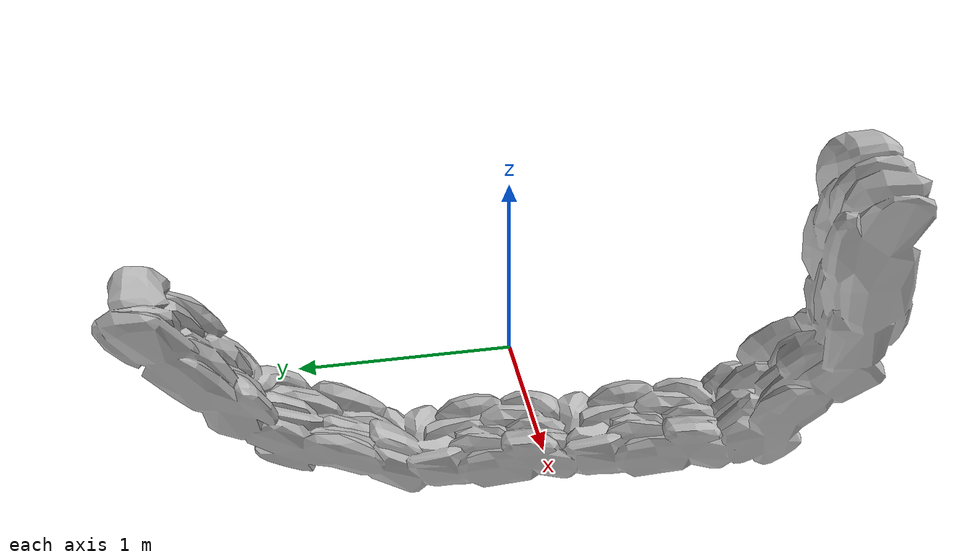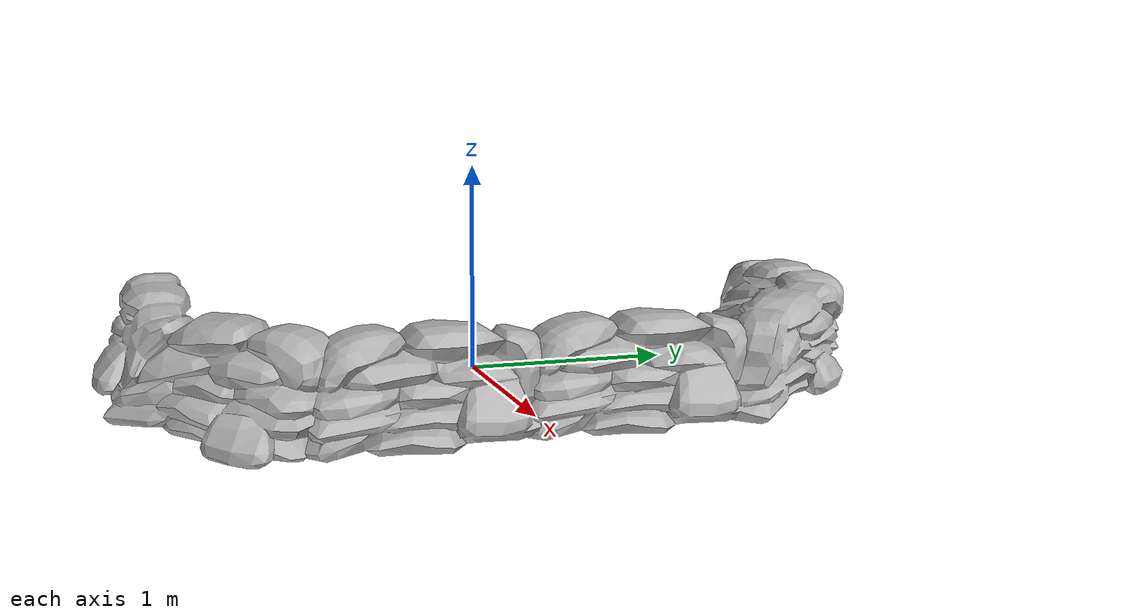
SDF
<?xml version="1.0" ?>
<sdf version="1.4">
	<model name="sandbags">
		<static>true</static>
		<link name="link">
			<pose>-5 0 0.345 0 0 0</pose>
			<collision name="collision">
				<geometry>
					<mesh>
						<uri>model://sandbags/mesh/sandbags.dae</uri>
						<scale>0.4 0.4 0.2</scale>
					</mesh>
				</geometry>
				<surface>
					<bounce>
						<restitution_coefficient>0.01</restitution_coefficient>
						<threshold>5.0</threshold>
					</bounce>
					<friction>
						<ode>
							<mu>10</mu>
							<mu2>10</mu2>
						</ode>
					</friction>
					<contact>
						<ode>
							<soft_cfm>0.001</soft_cfm>
							<kp>100000.0</kp>
							<kd>1000.0</kd>
						</ode>
					</contact>
				</surface>
			</collision>
			<visual name="visual">
				<geometry>
					<mesh>
						<uri>model://sandbags/mesh/sandbags.dae</uri>
						<scale>0.4 0.4 0.2</scale>
					</mesh>
				</geometry>
			</visual>
		</link>
	</model>
</sdf>
